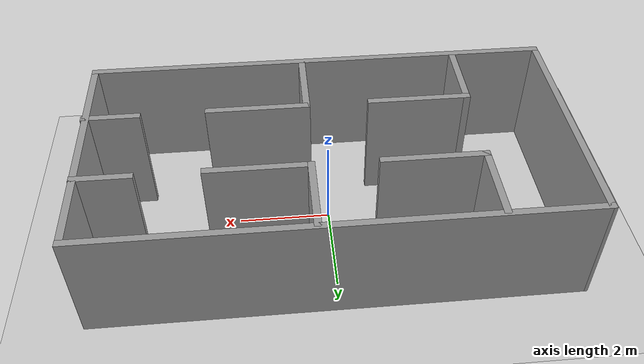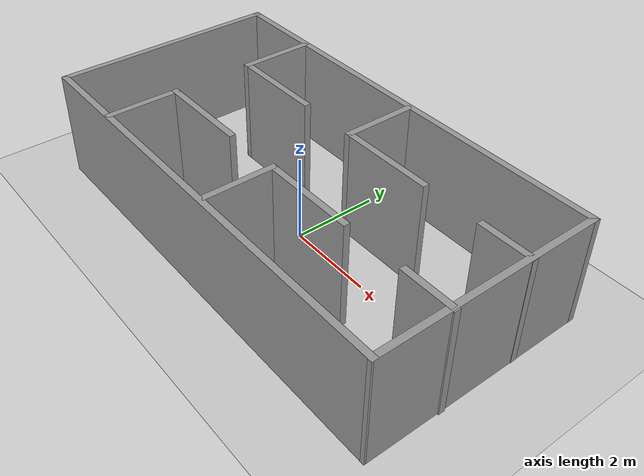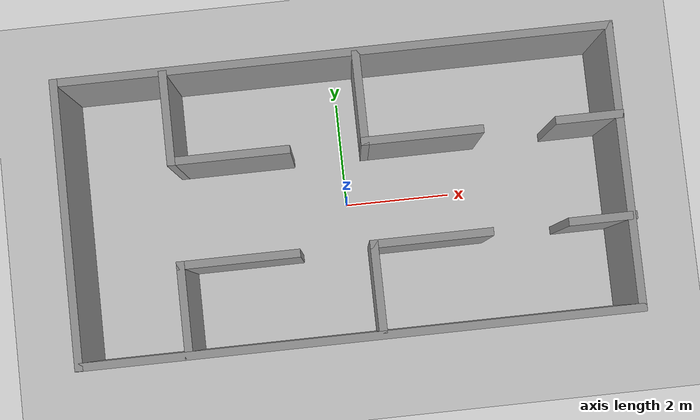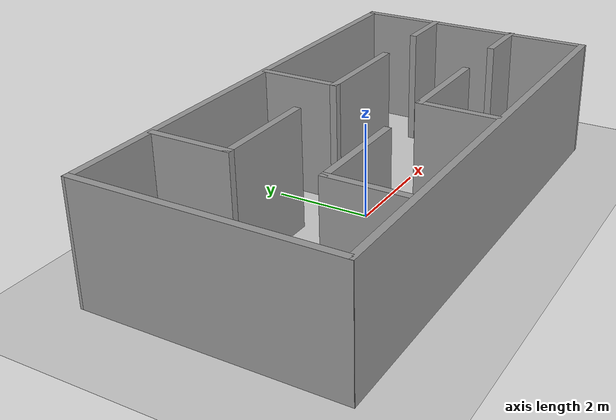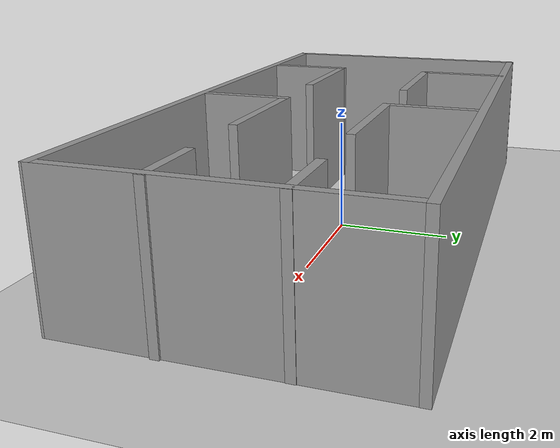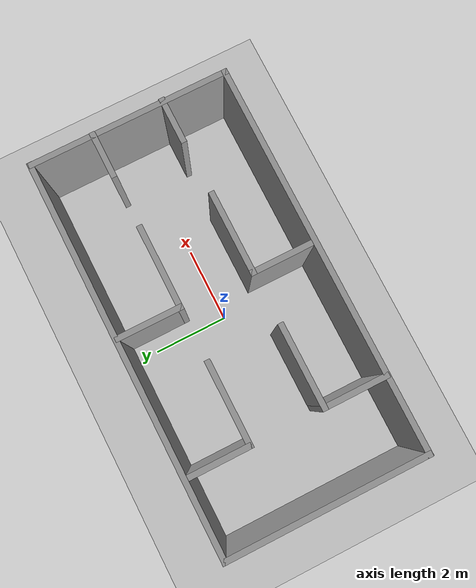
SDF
<?xml version="1.0" ?>

<sdf version="1.6">
<world name="default">
	<include>
		<uri>model://sun</uri>
		<pose>0 0 100 0 0 0</pose>
	</include>

	<include>
		<uri>model://ground_plane</uri>
	</include>

	<include>
		<uri>model://ambiente_1</uri>
		<pose>0 0 0 0 0 0</pose>
	</include>
</world>
</sdf>

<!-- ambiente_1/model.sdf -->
<sdf version='1.7'>
  <model name='ambiente_1'>
    <pose>0.131797 0.019805 0 0 -0 0</pose>
    <link name='Wall_55'>
      <collision name='Wall_55_Collision'>
        <geometry>
          <box>
            <size>10.3393 0.15 2.5</size>
          </box>
        </geometry>
        <pose>0 0 1.25 0 -0 0</pose>
      </collision>
      <visual name='Wall_55_Visual'>
        <pose>0 0 1.25 0 -0 0</pose>
        <geometry>
          <box>
            <size>10.3393 0.15 2.5</size>
          </box>
        </geometry>
        <material>
          <script>
            <uri>file://media/materials/scripts/gazebo.material</uri>
            <name>Gazebo/Grey</name>
          </script>
          <ambient>1 1 1 1</ambient>
        </material>
        <meta>
          <layer>0</layer>
        </meta>
      </visual>
      <pose>-0.01242 2.58788 0 0 -0 0.000635</pose>
    </link>
    <link name='Wall_57'>
      <collision name='Wall_57_Collision'>
        <geometry>
          <box>
            <size>5.31945 0.15 2.5</size>
          </box>
        </geometry>
        <pose>0 0 1.25 0 -0 0</pose>
      </collision>
      <visual name='Wall_57_Visual'>
        <pose>0 0 1.25 0 -0 0</pose>
        <geometry>
          <box>
            <size>5.31945 0.15 2.5</size>
          </box>
        </geometry>
        <material>
          <script>
            <uri>file://media/materials/scripts/gazebo.material</uri>
            <name>Gazebo/Grey</name>
          </script>
          <ambient>1 1 1 1</ambient>
        </material>
        <meta>
          <layer>0</layer>
        </meta>
      </visual>
      <pose>-5.10802 -8e-05 0 0 -0 -1.57116</pose>
    </link>
    <link name='Wall_61'>
      <collision name='Wall_61_Collision'>
        <geometry>
          <box>
            <size>10.332 0.15 2.5</size>
          </box>
        </geometry>
        <pose>0 0 1.25 0 -0 0</pose>
      </collision>
      <visual name='Wall_61_Visual'>
        <pose>0 0 1.25 0 -0 0</pose>
        <geometry>
          <box>
            <size>10.332 0.15 2.5</size>
          </box>
        </geometry>
        <material>
          <script>
            <uri>file://media/materials/scripts/gazebo.material</uri>
            <name>Gazebo/Grey</name>
          </script>
          <ambient>1 1 1 1</ambient>
        </material>
        <meta>
          <layer>0</layer>
        </meta>
      </visual>
      <pose>-0.013044 -2.59114 0 0 -0 3.14159</pose>
    </link>
    <link name='Wall_63'>
      <collision name='Wall_63_Collision'>
        <geometry>
          <box>
            <size>5.30656 0.15 2.5</size>
          </box>
        </geometry>
        <pose>0 0 1.25 0 -0 0</pose>
      </collision>
      <visual name='Wall_63_Visual'>
        <pose>0 0 1.25 0 -0 0</pose>
        <geometry>
          <box>
            <size>5.30656 0.15 2.5</size>
          </box>
        </geometry>
        <material>
          <script>
            <uri>file://media/materials/scripts/gazebo.material</uri>
            <name>Gazebo/Grey</name>
          </script>
          <ambient>1 1 1 1</ambient>
        </material>
        <meta>
          <layer>0</layer>
        </meta>
      </visual>
      <pose>5.07826 -0.012876 0 0 -0 1.57068</pose>
    </link>
    <link name='Wall_65'>
      <collision name='Wall_65_Collision'>
        <geometry>
          <box>
            <size>1.75 0.15 2.5</size>
          </box>
        </geometry>
        <pose>0 0 1.25 0 -0 0</pose>
      </collision>
      <visual name='Wall_65_Visual'>
        <pose>0 0 1.25 0 -0 0</pose>
        <geometry>
          <box>
            <size>1.75 0.15 2.5</size>
          </box>
        </geometry>
        <material>
          <script>
            <uri>file://media/materials/scripts/gazebo.material</uri>
            <name>Gazebo/Grey</name>
          </script>
          <ambient>1 1 1 1</ambient>
        </material>
        <meta>
          <layer>0</layer>
        </meta>
      </visual>
      <pose>-3.11275 1.73062 0 0 -0 -1.5708</pose>
    </link>
    <link name='Wall_66'>
      <collision name='Wall_66_Collision'>
        <geometry>
          <box>
            <size>2.25 0.15 2.5</size>
          </box>
        </geometry>
        <pose>0 0 1.25 0 -0 0</pose>
      </collision>
      <visual name='Wall_66_Visual'>
        <pose>0 0 1.25 0 -0 0</pose>
        <geometry>
          <box>
            <size>2.25 0.15 2.5</size>
          </box>
        </geometry>
        <material>
          <script>
            <uri>file://media/materials/scripts/gazebo.material</uri>
            <name>Gazebo/Grey</name>
          </script>
          <ambient>1 1 1 1</ambient>
        </material>
        <meta>
          <layer>0</layer>
        </meta>
      </visual>
      <pose>-2.06275 0.930621 0 0 -0 0</pose>
    </link>
    <link name='Wall_68'>
      <collision name='Wall_68_Collision'>
        <geometry>
          <box>
            <size>1.75 0.15 2.5</size>
          </box>
        </geometry>
        <pose>0 0 1.25 0 -0 0</pose>
      </collision>
      <visual name='Wall_68_Visual'>
        <pose>0 0 1.25 0 -0 0</pose>
        <geometry>
          <box>
            <size>1.75 0.15 2.5</size>
          </box>
        </geometry>
        <material>
          <script>
            <uri>file://media/materials/scripts/gazebo.material</uri>
            <name>Gazebo/Grey</name>
          </script>
          <ambient>1 1 1 1</ambient>
        </material>
        <meta>
          <layer>0</layer>
        </meta>
      </visual>
      <pose>-3.12144 -1.76503 0 0 -0 1.5708</pose>
    </link>
    <link name='Wall_69'>
      <collision name='Wall_69_Collision'>
        <geometry>
          <box>
            <size>2.25 0.15 2.5</size>
          </box>
        </geometry>
        <pose>0 0 1.25 0 -0 0</pose>
      </collision>
      <visual name='Wall_69_Visual'>
        <pose>0 0 1.25 0 -0 0</pose>
        <geometry>
          <box>
            <size>2.25 0.15 2.5</size>
          </box>
        </geometry>
        <material>
          <script>
            <uri>file://media/materials/scripts/gazebo.material</uri>
            <name>Gazebo/Grey</name>
          </script>
          <ambient>1 1 1 1</ambient>
        </material>
        <meta>
          <layer>0</layer>
        </meta>
      </visual>
      <pose>-2.07144 -0.965031 0 0 -0 0</pose>
    </link>
    <link name='Wall_71'>
      <collision name='Wall_71_Collision'>
        <geometry>
          <box>
            <size>1.68913 0.15 2.5</size>
          </box>
        </geometry>
        <pose>0 0 1.25 0 -0 0</pose>
      </collision>
      <visual name='Wall_71_Visual'>
        <pose>0 0 1.25 0 -0 0</pose>
        <geometry>
          <box>
            <size>1.68913 0.15 2.5</size>
          </box>
        </geometry>
        <material>
          <script>
            <uri>file://media/materials/scripts/gazebo.material</uri>
            <name>Gazebo/Grey</name>
          </script>
          <ambient>1 1 1 1</ambient>
        </material>
        <meta>
          <layer>0</layer>
        </meta>
      </visual>
      <pose>0.391599 -1.71721 0 0 -0 1.5708</pose>
    </link>
    <link name='Wall_72'>
      <collision name='Wall_72_Collision'>
        <geometry>
          <box>
            <size>2.25 0.15 2.5</size>
          </box>
        </geometry>
        <pose>0 0 1.25 0 -0 0</pose>
      </collision>
      <visual name='Wall_72_Visual'>
        <pose>0 0 1.25 0 -0 0</pose>
        <geometry>
          <box>
            <size>2.25 0.15 2.5</size>
          </box>
        </geometry>
        <material>
          <script>
            <uri>file://media/materials/scripts/gazebo.material</uri>
            <name>Gazebo/Grey</name>
          </script>
          <ambient>1 1 1 1</ambient>
        </material>
        <meta>
          <layer>0</layer>
        </meta>
      </visual>
      <pose>1.4416 -0.94764 0 0 -0 0</pose>
    </link>
    <link name='Wall_74'>
      <collision name='Wall_74_Collision'>
        <geometry>
          <box>
            <size>1.25 0.15 2.5</size>
          </box>
        </geometry>
        <pose>0 0 1.25 0 -0 0</pose>
      </collision>
      <visual name='Wall_74_Visual'>
        <pose>0 0 1.25 0 -0 0</pose>
        <geometry>
          <box>
            <size>1.25 0.15 2.5</size>
          </box>
        </geometry>
        <material>
          <script>
            <uri>file://media/materials/scripts/gazebo.material</uri>
            <name>Gazebo/Grey</name>
          </script>
          <ambient>1 1 1 1</ambient>
        </material>
        <meta>
          <layer>0</layer>
        </meta>
      </visual>
      <pose>4.55899 -0.921553 0 0 -0 0</pose>
    </link>
    <link name='Wall_76'>
      <collision name='Wall_76_Collision'>
        <geometry>
          <box>
            <size>1.25 0.15 2.5</size>
          </box>
        </geometry>
        <pose>0 0 1.25 0 -0 0</pose>
      </collision>
      <visual name='Wall_76_Visual'>
        <pose>0 0 1.25 0 -0 0</pose>
        <geometry>
          <box>
            <size>1.25 0.15 2.5</size>
          </box>
        </geometry>
        <material>
          <script>
            <uri>file://media/materials/scripts/gazebo.material</uri>
            <name>Gazebo/Grey</name>
          </script>
          <ambient>1 1 1 1</ambient>
        </material>
        <meta>
          <layer>0</layer>
        </meta>
      </visual>
      <pose>4.53725 0.939317 0 0 -0 3.14159</pose>
    </link>
    <link name='Wall_78'>
      <collision name='Wall_78_Collision'>
        <geometry>
          <box>
            <size>1.75 0.15 2.5</size>
          </box>
        </geometry>
        <pose>0 0 1.25 0 -0 0</pose>
      </collision>
      <visual name='Wall_78_Visual'>
        <pose>0 0 1.25 0 -0 0</pose>
        <geometry>
          <box>
            <size>1.75 0.15 2.5</size>
          </box>
        </geometry>
        <material>
          <script>
            <uri>file://media/materials/scripts/gazebo.material</uri>
            <name>Gazebo/Grey</name>
          </script>
          <ambient>1 1 1 1</ambient>
        </material>
        <meta>
          <layer>0</layer>
        </meta>
      </visual>
      <pose>0.426382 1.73062 0 0 -0 1.5708</pose>
    </link>
    <link name='Wall_80'>
      <collision name='Wall_80_Collision'>
        <geometry>
          <box>
            <size>2.25 0.15 2.5</size>
          </box>
        </geometry>
        <pose>0 0 1.25 0 -0 0</pose>
      </collision>
      <visual name='Wall_80_Visual'>
        <pose>0 0 1.25 0 -0 0</pose>
        <geometry>
          <box>
            <size>2.25 0.15 2.5</size>
          </box>
        </geometry>
        <material>
          <script>
            <uri>file://media/materials/scripts/gazebo.material</uri>
            <name>Gazebo/Grey</name>
          </script>
          <ambient>1 1 1 1</ambient>
        </material>
        <meta>
          <layer>0</layer>
        </meta>
      </visual>
      <pose>1.47638 0.930621 0 0 -0 0</pose>
    </link>
    <static>1</static>
  </model>
</sdf>
